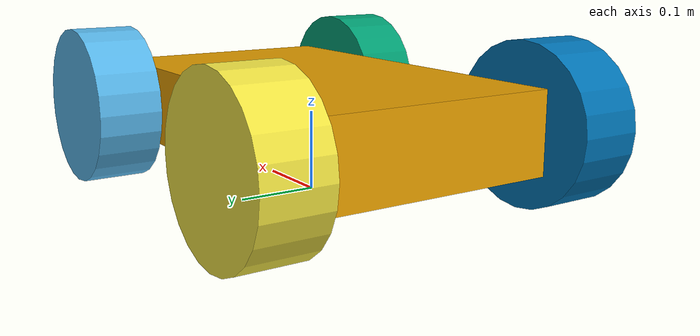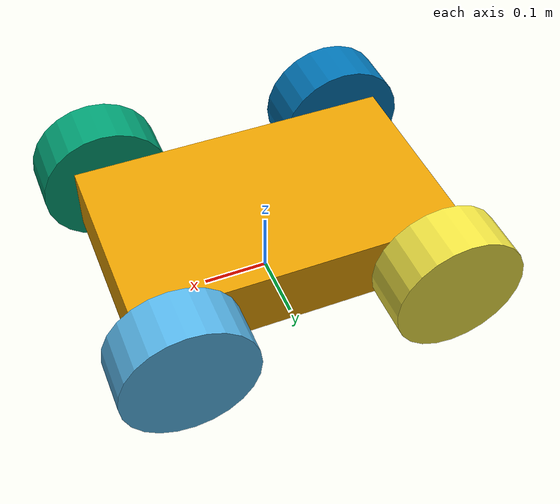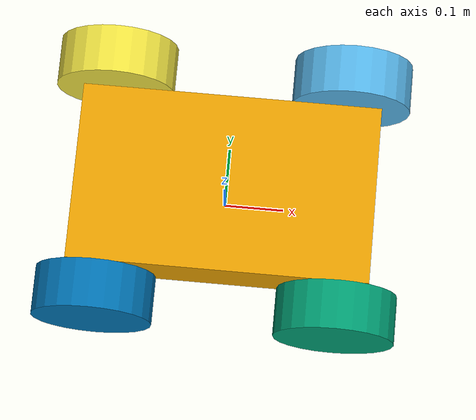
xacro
<?xml version="1.0"?>
<robot name="ackermann_robot" xmlns:xacro="http://www.ros.org/wiki/xacro">

  <xacro:property name="pi" value="3.14"/>
  <xacro:property name="wheel_roll_angle" value="${pi/2}"/>

  <!-- Base Link (Chassis) -->
  <link name="base_link">
    <visual>
      <origin xyz="0 0 0.1" rpy="0 0 0"/>
      <geometry>
        <box size="0.5 0.3 0.1"/>
      </geometry>
    </visual>
    <collision>
      <origin xyz="0 0 0.1" rpy="0 0 0"/>
      <geometry>
        <box size="0.5 0.3 0.1"/>
      </geometry>
    </collision>
    <inertial>
      <origin xyz="0 0 0.1" rpy="0 0 0"/>
      <mass value="5.0"/>
      <inertia ixx="0.083" ixy="0" ixz="0" iyy="0.083" iyz="0" izz="0.083"/>
    </inertial>
  </link>

  <link name="steering_left_wheel">
    <visual>
      <origin xyz="0 0 0" rpy="${wheel_roll_angle} 0 0"/>
      <geometry>
        <cylinder radius="0.1" length="0.08"/>
      </geometry>
    </visual>
    <collision>
      <origin xyz="0 0 0" rpy="${wheel_roll_angle} 0 0"/>
      <geometry>
        <cylinder radius="0.1" length="0.08"/>
      </geometry>
      <friction>
        <ode>
          <mu>10.0</mu>
          <mu2>10.0</mu2>
          <slip1>0.0</slip1>
          <slip2>0.0</slip2>
        </ode>
      </friction>
    </collision>
    <inertial>
      <origin xyz="0 0 0" rpy="${wheel_roll_angle} 0 0"/>
      <mass value="1.0"/>
      <inertia ixx="0.001" ixy="0" ixz="0" iyy="0.001" iyz="0" izz="0.001"/>
    </inertial>
  </link>

  <link name="steering_right_wheel">
    <visual>
      <origin xyz="0 0 0" rpy="${wheel_roll_angle} 0 0"/>
      <geometry>
        <cylinder radius="0.1" length="0.08"/>
      </geometry>
    </visual>
    <collision>
      <origin xyz="0 0 0" rpy="${wheel_roll_angle} 0 0"/>
      <geometry>
        <cylinder radius="0.1" length="0.08"/>
      </geometry>
      <friction>
        <ode>
          <mu>10.0</mu>
          <mu2>10.0</mu2>
          <slip1>0.0</slip1>
          <slip2>0.0</slip2>
        </ode>
      </friction>
    </collision>
    <inertial>
      <origin xyz="0 0 0" rpy="${wheel_roll_angle} 0 0"/>
      <mass value="1.0"/>
      <inertia ixx="0.001" ixy="0" ixz="0" iyy="0.001" iyz="0" izz="0.001"/>
    </inertial>
  </link>

  <link name="rear_left_wheel">
    <visual>
      <origin xyz="0 0 0" rpy="${wheel_roll_angle} 0 0"/>
      <geometry>
        <cylinder radius="0.1" length="0.08"/>
      </geometry>
    </visual>
    <collision>
      <origin xyz="0 0 0" rpy="${wheel_roll_angle} 0 0"/>
      <geometry>
        <cylinder radius="0.1" length="0.08"/>
      </geometry>
      <friction>
        <ode>
          <mu>10.0</mu>
          <mu2>10.0</mu2>
          <slip1>0.0</slip1>
          <slip2>0.0</slip2>
        </ode>
      </friction>
    </collision>
    <inertial>
      <origin xyz="0 0 0" rpy="${wheel_roll_angle} 0 0"/>
      <mass value="1.0"/>
      <inertia ixx="0.001" ixy="0" ixz="0" iyy="0.001" iyz="0" izz="0.001"/>
    </inertial>
  </link>

  <link name="rear_right_wheel">
    <visual>
      <origin xyz="0 0 0" rpy="${wheel_roll_angle} 0 0"/>
      <geometry>
        <cylinder radius="0.1" length="0.08"/>
      </geometry>
    </visual>
    <collision>
      <origin xyz="0 0 0" rpy="${wheel_roll_angle} 0 0"/>
      <geometry>
        <cylinder radius="0.1" length="0.08"/>
      </geometry>
      <friction>
        <ode>
          <mu>10.0</mu>
          <mu2>10.0</mu2>
          <slip1>0.0</slip1>
          <slip2>0.0</slip2>
        </ode>
      </friction>
    </collision>
    <inertial>
      <origin xyz="0 0 0" rpy="${wheel_roll_angle} 0 0"/>
      <mass value="1.0"/>
      <inertia ixx="0.001" ixy="0" ixz="0" iyy="0.001" iyz="0" izz="0.001"/>
    </inertial>
  </link>

  <joint name="rear_left_wheel_joint" type="continuous">
    <parent link="base_link"/>
    <child link="rear_left_wheel"/>
    <origin xyz="-0.2 0.2 0.1" rpy="0 0 0"/>
    <axis xyz="0 1 0" rpy="0 0 0"/>
    <limit effort="100" velocity="100"/>
    <joint_properties damping="1.0" friction="1.0"/>
  </joint>

  <joint name="rear_right_wheel_joint" type="continuous">
    <parent link="base_link"/>
    <child link="rear_right_wheel"/>
    <origin xyz="-0.2 -0.2 0.1" rpy="0 0 0"/>
    <axis xyz="0 1 0" rpy="0 0 0"/>
    <limit effort="100" velocity="100"/>
    <joint_properties damping="1.0" friction="1.0"/>
  </joint>

    <!-- Juntas dianteiras (direcionadas) -->
  <joint name="front_left_steering_joint" type="revolute">
    <parent link="base_link"/>
    <child link="steering_left_wheel"/>
    <origin xyz="0.2 0.2 0.1" rpy="0 0 0"/>
    <axis xyz="0 0 1"/>
    <limit lower="-0.5236" upper="0.5236" effort="10" velocity="1.0"/> <!-- Limite de direção (±30 graus) -->
  </joint>

  <joint name="front_right_steering_joint" type="revolute">
    <parent link="base_link"/>
    <child link="steering_right_wheel"/>
    <origin xyz="0.2 -0.2 0.1" rpy="0 0 0"/>
    <axis xyz="0 0 1"/>
    <limit lower="-0.5236" upper="0.5236" effort="10" velocity="1.0"/> <!-- Limite de direção (±30 graus) -->
  </joint>

  <!-- Plugin para Ackermann Steering Control diretamente no Xacro -->
  <gazebo>
    <plugin name="ackermann_steering_controller" filename="libackermann_steering_controller.so">
      <robotNamespace>/</robotNamespace>
      <rear_wheels>                   <!-- Juntas das rodas traseiras -->
        rear_left_wheel_joint
        rear_right_wheel_joint
      </rear_wheels>
      <front_steering>                <!-- Juntas de direção dianteiras -->
        front_left_steering_joint
        front_right_steering_joint
      </front_steering>
      <wheel_base>1.0</wheel_base>               <!-- Distância entre eixos -->
      <wheel_radius>0.2</wheel_radius>           <!-- Raio das rodas -->
      <steering_limit>0.5235987756</steering_limit> <!-- Limite de direção (±30 graus) -->
      <cmd_vel_timeout>0.5</cmd_vel_timeout>     <!-- Tempo limite para comando no /cmd_vel -->
      <base_frame_id>base_link</base_frame_id>   <!-- Frame base do robô -->
      <enable_odom_tf>true</enable_odom_tf>      <!-- Publicar transformações de odometria -->
      <publish_rate>50</publish_rate>            <!-- Taxa de publicação de odometria -->
      <velocity_rolling_window_size>10</velocity_rolling_window_size> <!-- Janela de suavização de odometria -->
    </plugin>
  </gazebo>

</robot>
